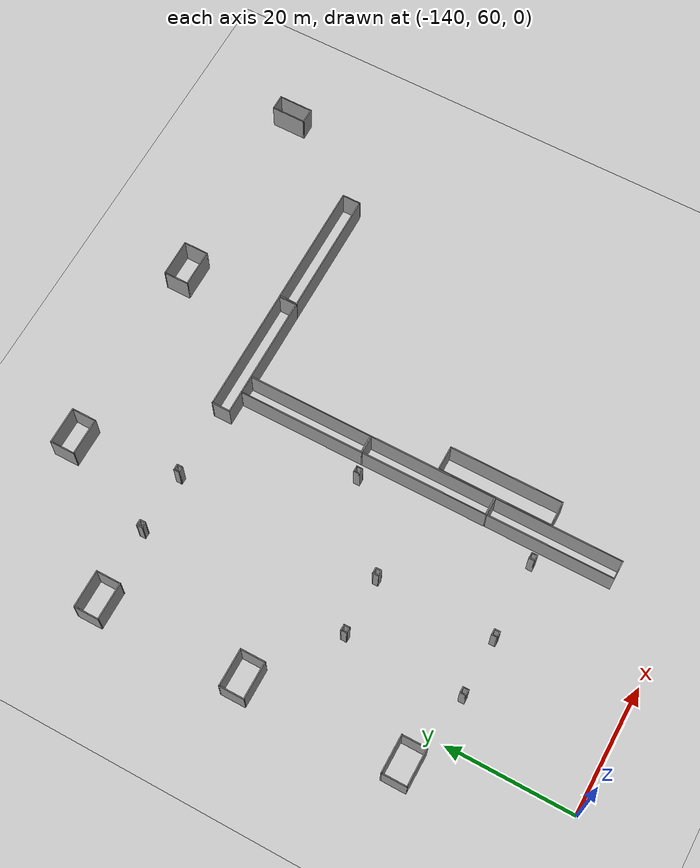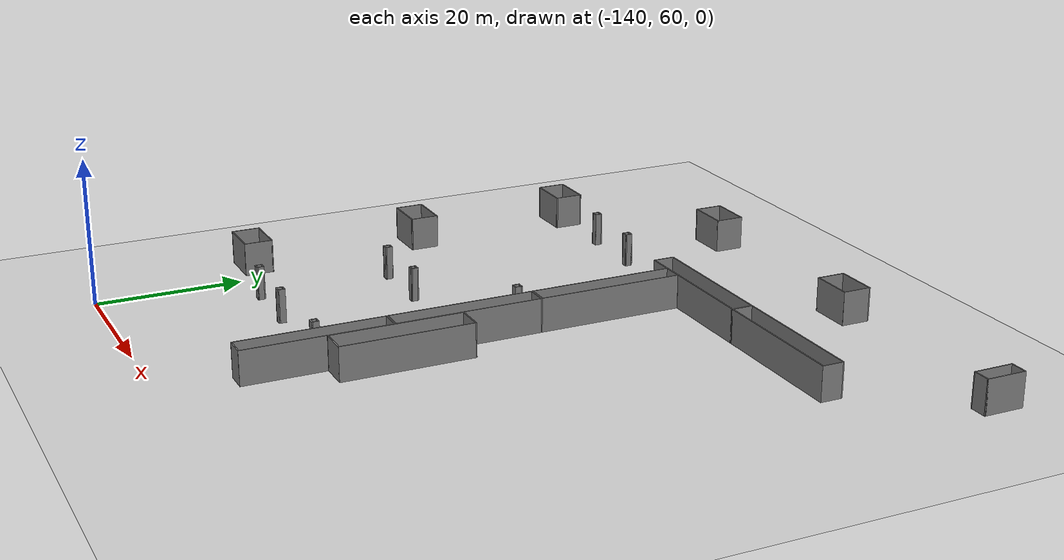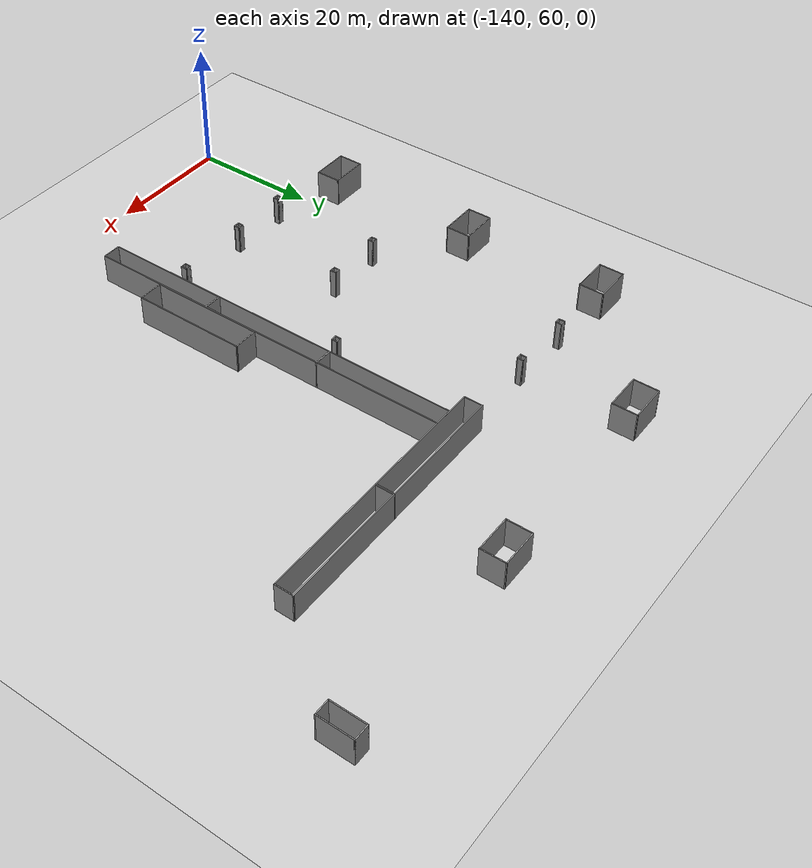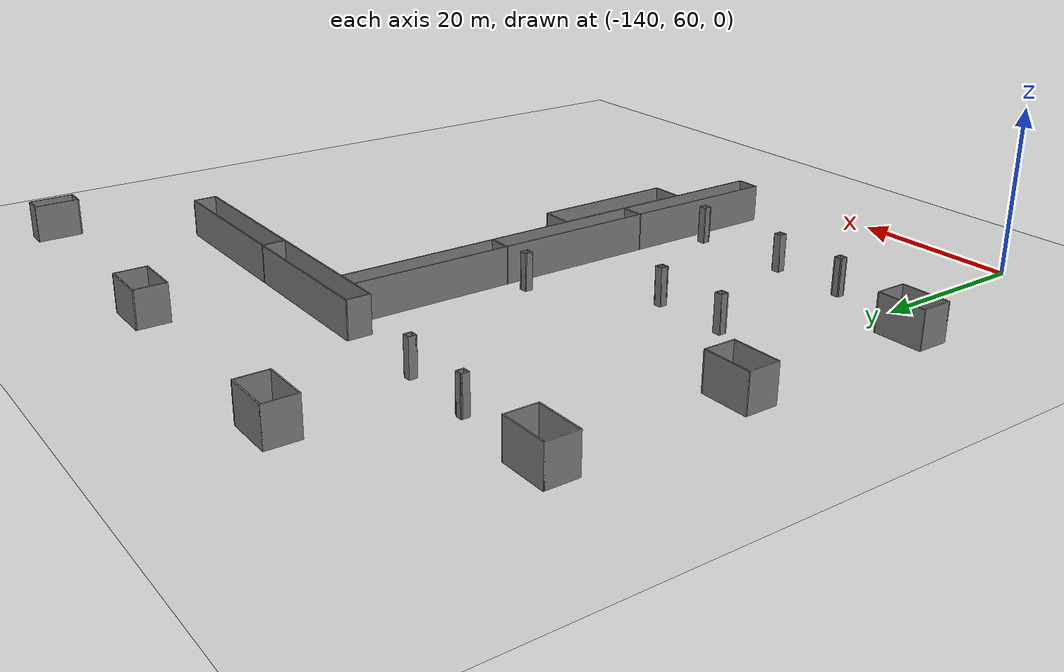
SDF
<sdf version="1.6">
 <world name="default">
  <model name="ground_plane">
   <static>1</static>
   <link name="link">
    <collision name="collision">
     <geometry><plane><normal>0 0 1</normal><size>320 320</size></plane></geometry>
     <surface>
      <contact><collide_bitmask>65535</collide_bitmask></contact>
      <friction><ode><mu>100</mu><mu2>50</mu2></ode></friction>
     </surface>
    </collision>
    <visual name="visual">
     <cast_shadows>0</cast_shadows>
     <geometry><plane><normal>0 0 1</normal><size>320 320</size></plane></geometry>
     <material>
      <script><uri>file://media/materials/scripts/gazebo.material</uri><name>Gazebo/Grey</name></script>
     </material>
    </visual>
   </link>
  </model>
  <model name="base4x6_8">
   <pose>-145.249 131.514 0 0 -0 0</pose>
   <link name="Wall_23">
    <collision name="Wall_23_Collision">
     <geometry><box><size>4 0.15 6.555</size></box></geometry>
     <pose>0 0 1.25 0 -0 0</pose>
    </collision>
    <visual name="Wall_23_Visual">
     <pose>0 0 1.25 0 -0 0</pose>
     <geometry><box><size>4 0.15 6.555</size></box></geometry>
     <material>
      <script><uri>file://media/materials/scripts/gazebo.material</uri><name>Gazebo/Grey</name></script>
      <ambient>1 1 1 1</ambient>
     </material>
     <meta><layer>0</layer></meta>
    </visual>
    <pose>-2.925 0 0 0 -0 -1.5708</pose>
   </link>
   <link name="Wall_24">
    <collision name="Wall_24_Collision">
     <geometry><box><size>6 0.15 6.555</size></box></geometry>
     <pose>0 0 1.25 0 -0 0</pose>
    </collision>
    <visual name="Wall_24_Visual">
     <pose>0 0 1.25 0 -0 0</pose>
     <geometry><box><size>6 0.15 6.555</size></box></geometry>
     <material>
      <script><uri>file://media/materials/scripts/gazebo.material</uri><name>Gazebo/Grey</name></script>
      <ambient>1 1 1 1</ambient>
     </material>
     <meta><layer>0</layer></meta>
    </visual>
    <pose>-0 -1.925 0 0 -0 0</pose>
   </link>
   <link name="Wall_25">
    <collision name="Wall_25_Collision">
     <geometry><box><size>4 0.15 6.555</size></box></geometry>
     <pose>0 0 1.25 0 -0 0</pose>
    </collision>
    <visual name="Wall_25_Visual">
     <pose>0 0 1.25 0 -0 0</pose>
     <geometry><box><size>4 0.15 6.555</size></box></geometry>
     <material>
      <script><uri>file://media/materials/scripts/gazebo.material</uri><name>Gazebo/Grey</name></script>
      <ambient>1 1 1 1</ambient>
     </material>
     <meta><layer>0</layer></meta>
    </visual>
    <pose>2.925 0 0 0 -0 1.5708</pose>
   </link>
   <link name="Wall_26">
    <collision name="Wall_26_Collision">
     <geometry><box><size>6 0.15 6.555</size></box></geometry>
     <pose>0 0 1.25 0 -0 0</pose>
    </collision>
    <visual name="Wall_26_Visual">
     <pose>0 0 1.25 0 -0 0</pose>
     <geometry><box><size>6 0.15 6.555</size></box></geometry>
     <material>
      <script><uri>file://media/materials/scripts/gazebo.material</uri><name>Gazebo/Grey</name></script>
      <ambient>1 1 1 1</ambient>
     </material>
     <meta><layer>0</layer></meta>
    </visual>
    <pose>-0 1.925 0 0 -0 3.14159</pose>
   </link>
   <static>1</static>
  </model>
  <model name="base4x6_8_clone_0">
   <pose>-145.361 108.292 0 0 -0 0</pose>
   <link name="Wall_23">
    <collision name="Wall_23_Collision">
     <geometry><box><size>4 0.15 6.555</size></box></geometry>
     <pose>0 0 1.25 0 -0 0</pose>
    </collision>
    <visual name="Wall_23_Visual">
     <pose>0 0 1.25 0 -0 0</pose>
     <geometry><box><size>4 0.15 6.555</size></box></geometry>
     <material>
      <script><uri>file://media/materials/scripts/gazebo.material</uri><name>Gazebo/Grey</name></script>
      <ambient>1 1 1 1</ambient>
     </material>
     <meta><layer>0</layer></meta>
    </visual>
    <pose>-2.925 0 0 0 -0 -1.5708</pose>
   </link>
   <link name="Wall_24">
    <collision name="Wall_24_Collision">
     <geometry><box><size>6 0.15 6.555</size></box></geometry>
     <pose>0 0 1.25 0 -0 0</pose>
    </collision>
    <visual name="Wall_24_Visual">
     <pose>0 0 1.25 0 -0 0</pose>
     <geometry><box><size>6 0.15 6.555</size></box></geometry>
     <material>
      <script><uri>file://media/materials/scripts/gazebo.material</uri><name>Gazebo/Grey</name></script>
      <ambient>1 1 1 1</ambient>
     </material>
     <meta><layer>0</layer></meta>
    </visual>
    <pose>-0 -1.925 0 0 -0 0</pose>
   </link>
   <link name="Wall_25">
    <collision name="Wall_25_Collision">
     <geometry><box><size>4 0.15 6.555</size></box></geometry>
     <pose>0 0 1.25 0 -0 0</pose>
    </collision>
    <visual name="Wall_25_Visual">
     <pose>0 0 1.25 0 -0 0</pose>
     <geometry><box><size>4 0.15 6.555</size></box></geometry>
     <material>
      <script><uri>file://media/materials/scripts/gazebo.material</uri><name>Gazebo/Grey</name></script>
      <ambient>1 1 1 1</ambient>
     </material>
     <meta><layer>0</layer></meta>
    </visual>
    <pose>2.925 0 0 0 -0 1.5708</pose>
   </link>
   <link name="Wall_26">
    <collision name="Wall_26_Collision">
     <geometry><box><size>6 0.15 6.555</size></box></geometry>
     <pose>0 0 1.25 0 -0 0</pose>
    </collision>
    <visual name="Wall_26_Visual">
     <pose>0 0 1.25 0 -0 0</pose>
     <geometry><box><size>6 0.15 6.555</size></box></geometry>
     <material>
      <script><uri>file://media/materials/scripts/gazebo.material</uri><name>Gazebo/Grey</name></script>
      <ambient>1 1 1 1</ambient>
     </material>
     <meta><layer>0</layer></meta>
    </visual>
    <pose>-0 1.925 0 0 -0 3.14159</pose>
   </link>
   <static>1</static>
  </model>
  <model name="base4x6_8_clone_1">
   <pose>-145.283 83.4365 0 0 -0 0</pose>
   <link name="Wall_23">
    <collision name="Wall_23_Collision">
     <geometry><box><size>4 0.15 6.555</size></box></geometry>
     <pose>0 0 1.25 0 -0 0</pose>
    </collision>
    <visual name="Wall_23_Visual">
     <pose>0 0 1.25 0 -0 0</pose>
     <geometry><box><size>4 0.15 6.555</size></box></geometry>
     <material>
      <script><uri>file://media/materials/scripts/gazebo.material</uri><name>Gazebo/Grey</name></script>
      <ambient>1 1 1 1</ambient>
     </material>
     <meta><layer>0</layer></meta>
    </visual>
    <pose>-2.925 0 0 0 -0 -1.5708</pose>
   </link>
   <link name="Wall_24">
    <collision name="Wall_24_Collision">
     <geometry><box><size>6 0.15 6.555</size></box></geometry>
     <pose>0 0 1.25 0 -0 0</pose>
    </collision>
    <visual name="Wall_24_Visual">
     <pose>0 0 1.25 0 -0 0</pose>
     <geometry><box><size>6 0.15 6.555</size></box></geometry>
     <material>
      <script><uri>file://media/materials/scripts/gazebo.material</uri><name>Gazebo/Grey</name></script>
      <ambient>1 1 1 1</ambient>
     </material>
     <meta><layer>0</layer></meta>
    </visual>
    <pose>-0 -1.925 0 0 -0 0</pose>
   </link>
   <link name="Wall_25">
    <collision name="Wall_25_Collision">
     <geometry><box><size>4 0.15 6.555</size></box></geometry>
     <pose>0 0 1.25 0 -0 0</pose>
    </collision>
    <visual name="Wall_25_Visual">
     <pose>0 0 1.25 0 -0 0</pose>
     <geometry><box><size>4 0.15 6.555</size></box></geometry>
     <material>
      <script><uri>file://media/materials/scripts/gazebo.material</uri><name>Gazebo/Grey</name></script>
      <ambient>1 1 1 1</ambient>
     </material>
     <meta><layer>0</layer></meta>
    </visual>
    <pose>2.925 0 0 0 -0 1.5708</pose>
   </link>
   <link name="Wall_26">
    <collision name="Wall_26_Collision">
     <geometry><box><size>6 0.15 6.555</size></box></geometry>
     <pose>0 0 1.25 0 -0 0</pose>
    </collision>
    <visual name="Wall_26_Visual">
     <pose>0 0 1.25 0 -0 0</pose>
     <geometry><box><size>6 0.15 6.555</size></box></geometry>
     <material>
      <script><uri>file://media/materials/scripts/gazebo.material</uri><name>Gazebo/Grey</name></script>
      <ambient>1 1 1 1</ambient>
     </material>
     <meta><layer>0</layer></meta>
    </visual>
    <pose>-0 1.925 0 0 -0 3.14159</pose>
   </link>
   <static>1</static>
  </model>
  <model name="base4x6_8_clone_8">
   <pose>-94.2981 147.5 0 0 -0 0</pose>
   <link name="Wall_23">
    <collision name="Wall_23_Collision">
     <geometry><box><size>4 0.15 6.555</size></box></geometry>
     <pose>0 0 1.25 0 -0 0</pose>
    </collision>
    <visual name="Wall_23_Visual">
     <pose>0 0 1.25 0 -0 0</pose>
     <geometry><box><size>4 0.15 6.555</size></box></geometry>
     <material>
      <script><uri>file://media/materials/scripts/gazebo.material</uri><name>Gazebo/Grey</name></script>
      <ambient>1 1 1 1</ambient>
     </material>
     <meta><layer>0</layer></meta>
    </visual>
    <pose>-2.925 0 0 0 -0 -1.5708</pose>
   </link>
   <link name="Wall_24">
    <collision name="Wall_24_Collision">
     <geometry><box><size>6 0.15 6.555</size></box></geometry>
     <pose>0 0 1.25 0 -0 0</pose>
    </collision>
    <visual name="Wall_24_Visual">
     <pose>0 0 1.25 0 -0 0</pose>
     <geometry><box><size>6 0.15 6.555</size></box></geometry>
     <material>
      <script><uri>file://media/materials/scripts/gazebo.material</uri><name>Gazebo/Grey</name></script>
      <ambient>1 1 1 1</ambient>
     </material>
     <meta><layer>0</layer></meta>
    </visual>
    <pose>-0 -1.925 0 0 -0 0</pose>
   </link>
   <link name="Wall_25">
    <collision name="Wall_25_Collision">
     <geometry><box><size>4 0.15 6.555</size></box></geometry>
     <pose>0 0 1.25 0 -0 0</pose>
    </collision>
    <visual name="Wall_25_Visual">
     <pose>0 0 1.25 0 -0 0</pose>
     <geometry><box><size>4 0.15 6.555</size></box></geometry>
     <material>
      <script><uri>file://media/materials/scripts/gazebo.material</uri><name>Gazebo/Grey</name></script>
      <ambient>1 1 1 1</ambient>
     </material>
     <meta><layer>0</layer></meta>
    </visual>
    <pose>2.925 0 0 0 -0 1.5708</pose>
   </link>
   <link name="Wall_26">
    <collision name="Wall_26_Collision">
     <geometry><box><size>6 0.15 6.555</size></box></geometry>
     <pose>0 0 1.25 0 -0 0</pose>
    </collision>
    <visual name="Wall_26_Visual">
     <pose>0 0 1.25 0 -0 0</pose>
     <geometry><box><size>6 0.15 6.555</size></box></geometry>
     <material>
      <script><uri>file://media/materials/scripts/gazebo.material</uri><name>Gazebo/Grey</name></script>
      <ambient>1 1 1 1</ambient>
     </material>
     <meta><layer>0</layer></meta>
    </visual>
    <pose>-0 1.925 0 0 -0 3.14159</pose>
   </link>
   <static>1</static>
  </model>
  <model name="base4x6_8_clone_9">
   <pose>-125.896 147.69 0 0 -0 0</pose>
   <link name="Wall_23">
    <collision name="Wall_23_Collision">
     <geometry><box><size>4 0.15 6.555</size></box></geometry>
     <pose>0 0 1.25 0 -0 0</pose>
    </collision>
    <visual name="Wall_23_Visual">
     <pose>0 0 1.25 0 -0 0</pose>
     <geometry><box><size>4 0.15 6.555</size></box></geometry>
     <material>
      <script><uri>file://media/materials/scripts/gazebo.material</uri><name>Gazebo/Grey</name></script>
      <ambient>1 1 1 1</ambient>
     </material>
     <meta><layer>0</layer></meta>
    </visual>
    <pose>-2.925 0 0 0 -0 -1.5708</pose>
   </link>
   <link name="Wall_24">
    <collision name="Wall_24_Collision">
     <geometry><box><size>6 0.15 6.555</size></box></geometry>
     <pose>0 0 1.25 0 -0 0</pose>
    </collision>
    <visual name="Wall_24_Visual">
     <pose>0 0 1.25 0 -0 0</pose>
     <geometry><box><size>6 0.15 6.555</size></box></geometry>
     <material>
      <script><uri>file://media/materials/scripts/gazebo.material</uri><name>Gazebo/Grey</name></script>
      <ambient>1 1 1 1</ambient>
     </material>
     <meta><layer>0</layer></meta>
    </visual>
    <pose>-0 -1.925 0 0 -0 0</pose>
   </link>
   <link name="Wall_25">
    <collision name="Wall_25_Collision">
     <geometry><box><size>4 0.15 6.555</size></box></geometry>
     <pose>0 0 1.25 0 -0 0</pose>
    </collision>
    <visual name="Wall_25_Visual">
     <pose>0 0 1.25 0 -0 0</pose>
     <geometry><box><size>4 0.15 6.555</size></box></geometry>
     <material>
      <script><uri>file://media/materials/scripts/gazebo.material</uri><name>Gazebo/Grey</name></script>
      <ambient>1 1 1 1</ambient>
     </material>
     <meta><layer>0</layer></meta>
    </visual>
    <pose>2.925 0 0 0 -0 1.5708</pose>
   </link>
   <link name="Wall_26">
    <collision name="Wall_26_Collision">
     <geometry><box><size>6 0.15 6.555</size></box></geometry>
     <pose>0 0 1.25 0 -0 0</pose>
    </collision>
    <visual name="Wall_26_Visual">
     <pose>0 0 1.25 0 -0 0</pose>
     <geometry><box><size>6 0.15 6.555</size></box></geometry>
     <material>
      <script><uri>file://media/materials/scripts/gazebo.material</uri><name>Gazebo/Grey</name></script>
      <ambient>1 1 1 1</ambient>
     </material>
     <meta><layer>0</layer></meta>
    </visual>
    <pose>-0 1.925 0 0 -0 3.14159</pose>
   </link>
   <static>1</static>
  </model>
  <model name="box_1mx1m_15_clone">
   <pose>-123.637 131.359 0 0 -0 0</pose>
   <link name="Wall_10">
    <collision name="Wall_10_Collision">
     <geometry><box><size>1 0.15 6.555</size></box></geometry>
     <pose>0 0 1.25 0 -0 0</pose>
    </collision>
    <visual name="Wall_10_Visual">
     <pose>0 0 1.25 0 -0 0</pose>
     <geometry><box><size>1 0.15 6.555</size></box></geometry>
     <material>
      <script><uri>file://media/materials/scripts/gazebo.material</uri><name>Gazebo/Grey</name></script>
      <ambient>1 1 1 1</ambient>
     </material>
     <meta><layer>0</layer></meta>
    </visual>
    <pose>-0.425 0 0 0 -0 -1.5708</pose>
   </link>
   <link name="Wall_11">
    <collision name="Wall_11_Collision">
     <geometry><box><size>1 0.15 6.555</size></box></geometry>
     <pose>0 0 1.25 0 -0 0</pose>
    </collision>
    <visual name="Wall_11_Visual">
     <pose>0 0 1.25 0 -0 0</pose>
     <geometry><box><size>1 0.15 6.555</size></box></geometry>
     <material>
      <script><uri>file://media/materials/scripts/gazebo.material</uri><name>Gazebo/Grey</name></script>
      <ambient>1 1 1 1</ambient>
     </material>
     <meta><layer>0</layer></meta>
    </visual>
    <pose>0 -0.425 0 0 -0 0</pose>
   </link>
   <link name="Wall_12">
    <collision name="Wall_12_Collision">
     <geometry><box><size>1 0.15 6.555</size></box></geometry>
     <pose>0 0 1.25 0 -0 0</pose>
    </collision>
    <visual name="Wall_12_Visual">
     <pose>0 0 1.25 0 -0 0</pose>
     <geometry><box><size>1 0.15 6.555</size></box></geometry>
     <material>
      <script><uri>file://media/materials/scripts/gazebo.material</uri><name>Gazebo/Grey</name></script>
      <ambient>1 1 1 1</ambient>
     </material>
     <meta><layer>0</layer></meta>
    </visual>
    <pose>0.425 0 0 0 -0 1.5708</pose>
   </link>
   <link name="Wall_13">
    <collision name="Wall_13_Collision">
     <geometry><box><size>1 0.15 6.555</size></box></geometry>
     <pose>0 0 1.25 0 -0 0</pose>
    </collision>
    <visual name="Wall_13_Visual">
     <pose>0 0 1.25 0 -0 0</pose>
     <geometry><box><size>1 0.15 6.555</size></box></geometry>
     <material>
      <script><uri>file://media/materials/scripts/gazebo.material</uri><name>Gazebo/Grey</name></script>
      <ambient>1 1 1 1</ambient>
     </material>
     <meta><layer>0</layer></meta>
    </visual>
    <pose>0 0.425 0 0 -0 3.14159</pose>
   </link>
   <static>1</static>
  </model>
  <model name="box_1mx1m_15_clone_0">
   <pose>-133.361 131.658 0 0 -0 0</pose>
   <link name="Wall_10">
    <collision name="Wall_10_Collision">
     <geometry><box><size>1 0.15 6.555</size></box></geometry>
     <pose>0 0 1.25 0 -0 0</pose>
    </collision>
    <visual name="Wall_10_Visual">
     <pose>0 0 1.25 0 -0 0</pose>
     <geometry><box><size>1 0.15 6.555</size></box></geometry>
     <material>
      <script><uri>file://media/materials/scripts/gazebo.material</uri><name>Gazebo/Grey</name></script>
      <ambient>1 1 1 1</ambient>
     </material>
     <meta><layer>0</layer></meta>
    </visual>
    <pose>-0.425 0 0 0 -0 -1.5708</pose>
   </link>
   <link name="Wall_11">
    <collision name="Wall_11_Collision">
     <geometry><box><size>1 0.15 6.555</size></box></geometry>
     <pose>0 0 1.25 0 -0 0</pose>
    </collision>
    <visual name="Wall_11_Visual">
     <pose>0 0 1.25 0 -0 0</pose>
     <geometry><box><size>1 0.15 6.555</size></box></geometry>
     <material>
      <script><uri>file://media/materials/scripts/gazebo.material</uri><name>Gazebo/Grey</name></script>
      <ambient>1 1 1 1</ambient>
     </material>
     <meta><layer>0</layer></meta>
    </visual>
    <pose>0 -0.425 0 0 -0 0</pose>
   </link>
   <link name="Wall_12">
    <collision name="Wall_12_Collision">
     <geometry><box><size>1 0.15 6.555</size></box></geometry>
     <pose>0 0 1.25 0 -0 0</pose>
    </collision>
    <visual name="Wall_12_Visual">
     <pose>0 0 1.25 0 -0 0</pose>
     <geometry><box><size>1 0.15 6.555</size></box></geometry>
     <material>
      <script><uri>file://media/materials/scripts/gazebo.material</uri><name>Gazebo/Grey</name></script>
      <ambient>1 1 1 1</ambient>
     </material>
     <meta><layer>0</layer></meta>
    </visual>
    <pose>0.425 0 0 0 -0 1.5708</pose>
   </link>
   <link name="Wall_13">
    <collision name="Wall_13_Collision">
     <geometry><box><size>1 0.15 6.555</size></box></geometry>
     <pose>0 0 1.25 0 -0 0</pose>
    </collision>
    <visual name="Wall_13_Visual">
     <pose>0 0 1.25 0 -0 0</pose>
     <geometry><box><size>1 0.15 6.555</size></box></geometry>
     <material>
      <script><uri>file://media/materials/scripts/gazebo.material</uri><name>Gazebo/Grey</name></script>
      <ambient>1 1 1 1</ambient>
     </material>
     <meta><layer>0</layer></meta>
    </visual>
    <pose>0 0.425 0 0 -0 3.14159</pose>
   </link>
   <static>1</static>
  </model>
  <model name="box_1mx1m_15_clone_1">
   <pose>-123.752 99.0367 0 0 -0 0</pose>
   <link name="Wall_10">
    <collision name="Wall_10_Collision">
     <geometry><box><size>1 0.15 6.555</size></box></geometry>
     <pose>0 0 1.25 0 -0 0</pose>
    </collision>
    <visual name="Wall_10_Visual">
     <pose>0 0 1.25 0 -0 0</pose>
     <geometry><box><size>1 0.15 6.555</size></box></geometry>
     <material>
      <script><uri>file://media/materials/scripts/gazebo.material</uri><name>Gazebo/Grey</name></script>
      <ambient>1 1 1 1</ambient>
     </material>
     <meta><layer>0</layer></meta>
    </visual>
    <pose>-0.425 0 0 0 -0 -1.5708</pose>
   </link>
   <link name="Wall_11">
    <collision name="Wall_11_Collision">
     <geometry><box><size>1 0.15 6.555</size></box></geometry>
     <pose>0 0 1.25 0 -0 0</pose>
    </collision>
    <visual name="Wall_11_Visual">
     <pose>0 0 1.25 0 -0 0</pose>
     <geometry><box><size>1 0.15 6.555</size></box></geometry>
     <material>
      <script><uri>file://media/materials/scripts/gazebo.material</uri><name>Gazebo/Grey</name></script>
      <ambient>1 1 1 1</ambient>
     </material>
     <meta><layer>0</layer></meta>
    </visual>
    <pose>0 -0.425 0 0 -0 0</pose>
   </link>
   <link name="Wall_12">
    <collision name="Wall_12_Collision">
     <geometry><box><size>1 0.15 6.555</size></box></geometry>
     <pose>0 0 1.25 0 -0 0</pose>
    </collision>
    <visual name="Wall_12_Visual">
     <pose>0 0 1.25 0 -0 0</pose>
     <geometry><box><size>1 0.15 6.555</size></box></geometry>
     <material>
      <script><uri>file://media/materials/scripts/gazebo.material</uri><name>Gazebo/Grey</name></script>
      <ambient>1 1 1 1</ambient>
     </material>
     <meta><layer>0</layer></meta>
    </visual>
    <pose>0.425 0 0 0 -0 1.5708</pose>
   </link>
   <link name="Wall_13">
    <collision name="Wall_13_Collision">
     <geometry><box><size>1 0.15 6.555</size></box></geometry>
     <pose>0 0 1.25 0 -0 0</pose>
    </collision>
    <visual name="Wall_13_Visual">
     <pose>0 0 1.25 0 -0 0</pose>
     <geometry><box><size>1 0.15 6.555</size></box></geometry>
     <material>
      <script><uri>file://media/materials/scripts/gazebo.material</uri><name>Gazebo/Grey</name></script>
      <ambient>1 1 1 1</ambient>
     </material>
     <meta><layer>0</layer></meta>
    </visual>
    <pose>0 0.425 0 0 -0 3.14159</pose>
   </link>
   <static>1</static>
  </model>
  <model name="box_1mx1m_15_clone_2">
   <pose>-123.762 80.5479 0 0 -0 0</pose>
   <link name="Wall_10">
    <collision name="Wall_10_Collision">
     <geometry><box><size>1 0.15 6.555</size></box></geometry>
     <pose>0 0 1.25 0 -0 0</pose>
    </collision>
    <visual name="Wall_10_Visual">
     <pose>0 0 1.25 0 -0 0</pose>
     <geometry><box><size>1 0.15 6.555</size></box></geometry>
     <material>
      <script><uri>file://media/materials/scripts/gazebo.material</uri><name>Gazebo/Grey</name></script>
      <ambient>1 1 1 1</ambient>
     </material>
     <meta><layer>0</layer></meta>
    </visual>
    <pose>-0.425 0 0 0 -0 -1.5708</pose>
   </link>
   <link name="Wall_11">
    <collision name="Wall_11_Collision">
     <geometry><box><size>1 0.15 6.555</size></box></geometry>
     <pose>0 0 1.25 0 -0 0</pose>
    </collision>
    <visual name="Wall_11_Visual">
     <pose>0 0 1.25 0 -0 0</pose>
     <geometry><box><size>1 0.15 6.555</size></box></geometry>
     <material>
      <script><uri>file://media/materials/scripts/gazebo.material</uri><name>Gazebo/Grey</name></script>
      <ambient>1 1 1 1</ambient>
     </material>
     <meta><layer>0</layer></meta>
    </visual>
    <pose>0 -0.425 0 0 -0 0</pose>
   </link>
   <link name="Wall_12">
    <collision name="Wall_12_Collision">
     <geometry><box><size>1 0.15 6.555</size></box></geometry>
     <pose>0 0 1.25 0 -0 0</pose>
    </collision>
    <visual name="Wall_12_Visual">
     <pose>0 0 1.25 0 -0 0</pose>
     <geometry><box><size>1 0.15 6.555</size></box></geometry>
     <material>
      <script><uri>file://media/materials/scripts/gazebo.material</uri><name>Gazebo/Grey</name></script>
      <ambient>1 1 1 1</ambient>
     </material>
     <meta><layer>0</layer></meta>
    </visual>
    <pose>0.425 0 0 0 -0 1.5708</pose>
   </link>
   <link name="Wall_13">
    <collision name="Wall_13_Collision">
     <geometry><box><size>1 0.15 6.555</size></box></geometry>
     <pose>0 0 1.25 0 -0 0</pose>
    </collision>
    <visual name="Wall_13_Visual">
     <pose>0 0 1.25 0 -0 0</pose>
     <geometry><box><size>1 0.15 6.555</size></box></geometry>
     <material>
      <script><uri>file://media/materials/scripts/gazebo.material</uri><name>Gazebo/Grey</name></script>
      <ambient>1 1 1 1</ambient>
     </material>
     <meta><layer>0</layer></meta>
    </visual>
    <pose>0 0.425 0 0 -0 3.14159</pose>
   </link>
   <static>1</static>
  </model>
  <model name="box_1mx1m_15_clone_17">
   <pose>-133.077 99.0078 0 0 -0 0</pose>
   <link name="Wall_10">
    <collision name="Wall_10_Collision">
     <geometry><box><size>1 0.15 6.555</size></box></geometry>
     <pose>0 0 1.25 0 -0 0</pose>
    </collision>
    <visual name="Wall_10_Visual">
     <pose>0 0 1.25 0 -0 0</pose>
     <geometry><box><size>1 0.15 6.555</size></box></geometry>
     <material>
      <script><uri>file://media/materials/scripts/gazebo.material</uri><name>Gazebo/Grey</name></script>
      <ambient>1 1 1 1</ambient>
     </material>
     <meta><layer>0</layer></meta>
    </visual>
    <pose>-0.425 0 0 0 -0 -1.5708</pose>
   </link>
   <link name="Wall_11">
    <collision name="Wall_11_Collision">
     <geometry><box><size>1 0.15 6.555</size></box></geometry>
     <pose>0 0 1.25 0 -0 0</pose>
    </collision>
    <visual name="Wall_11_Visual">
     <pose>0 0 1.25 0 -0 0</pose>
     <geometry><box><size>1 0.15 6.555</size></box></geometry>
     <material>
      <script><uri>file://media/materials/scripts/gazebo.material</uri><name>Gazebo/Grey</name></script>
      <ambient>1 1 1 1</ambient>
     </material>
     <meta><layer>0</layer></meta>
    </visual>
    <pose>0 -0.425 0 0 -0 0</pose>
   </link>
   <link name="Wall_12">
    <collision name="Wall_12_Collision">
     <geometry><box><size>1 0.15 6.555</size></box></geometry>
     <pose>0 0 1.25 0 -0 0</pose>
    </collision>
    <visual name="Wall_12_Visual">
     <pose>0 0 1.25 0 -0 0</pose>
     <geometry><box><size>1 0.15 6.555</size></box></geometry>
     <material>
      <script><uri>file://media/materials/scripts/gazebo.material</uri><name>Gazebo/Grey</name></script>
      <ambient>1 1 1 1</ambient>
     </material>
     <meta><layer>0</layer></meta>
    </visual>
    <pose>0.425 0 0 0 -0 1.5708</pose>
   </link>
   <link name="Wall_13">
    <collision name="Wall_13_Collision">
     <geometry><box><size>1 0.15 6.555</size></box></geometry>
     <pose>0 0 1.25 0 -0 0</pose>
    </collision>
    <visual name="Wall_13_Visual">
     <pose>0 0 1.25 0 -0 0</pose>
     <geometry><box><size>1 0.15 6.555</size></box></geometry>
     <material>
      <script><uri>file://media/materials/scripts/gazebo.material</uri><name>Gazebo/Grey</name></script>
      <ambient>1 1 1 1</ambient>
     </material>
     <meta><layer>0</layer></meta>
    </visual>
    <pose>0 0.425 0 0 -0 3.14159</pose>
   </link>
   <static>1</static>
  </model>
  <model name="box_1mx1m_15_clone_2_clone">
   <pose>-133.058 80.6658 0 0 -0 0</pose>
   <link name="Wall_10">
    <collision name="Wall_10_Collision">
     <geometry><box><size>1 0.15 6.555</size></box></geometry>
     <pose>0 0 1.25 0 -0 0</pose>
    </collision>
    <visual name="Wall_10_Visual">
     <pose>0 0 1.25 0 -0 0</pose>
     <geometry><box><size>1 0.15 6.555</size></box></geometry>
     <material>
      <script><uri>file://media/materials/scripts/gazebo.material</uri><name>Gazebo/Grey</name></script>
      <ambient>1 1 1 1</ambient>
     </material>
     <meta><layer>0</layer></meta>
    </visual>
    <pose>-0.425 0 0 0 -0 -1.5708</pose>
   </link>
   <link name="Wall_11">
    <collision name="Wall_11_Collision">
     <geometry><box><size>1 0.15 6.555</size></box></geometry>
     <pose>0 0 1.25 0 -0 0</pose>
    </collision>
    <visual name="Wall_11_Visual">
     <pose>0 0 1.25 0 -0 0</pose>
     <geometry><box><size>1 0.15 6.555</size></box></geometry>
     <material>
      <script><uri>file://media/materials/scripts/gazebo.material</uri><name>Gazebo/Grey</name></script>
      <ambient>1 1 1 1</ambient>
     </material>
     <meta><layer>0</layer></meta>
    </visual>
    <pose>0 -0.425 0 0 -0 0</pose>
   </link>
   <link name="Wall_12">
    <collision name="Wall_12_Collision">
     <geometry><box><size>1 0.15 6.555</size></box></geometry>
     <pose>0 0 1.25 0 -0 0</pose>
    </collision>
    <visual name="Wall_12_Visual">
     <pose>0 0 1.25 0 -0 0</pose>
     <geometry><box><size>1 0.15 6.555</size></box></geometry>
     <material>
      <script><uri>file://media/materials/scripts/gazebo.material</uri><name>Gazebo/Grey</name></script>
      <ambient>1 1 1 1</ambient>
     </material>
     <meta><layer>0</layer></meta>
    </visual>
    <pose>0.425 0 0 0 -0 1.5708</pose>
   </link>
   <link name="Wall_13">
    <collision name="Wall_13_Collision">
     <geometry><box><size>1 0.15 6.555</size></box></geometry>
     <pose>0 0 1.25 0 -0 0</pose>
    </collision>
    <visual name="Wall_13_Visual">
     <pose>0 0 1.25 0 -0 0</pose>
     <geometry><box><size>1 0.15 6.555</size></box></geometry>
     <material>
      <script><uri>file://media/materials/scripts/gazebo.material</uri><name>Gazebo/Grey</name></script>
      <ambient>1 1 1 1</ambient>
     </material>
     <meta><layer>0</layer></meta>
    </visual>
    <pose>0 0.425 0 0 -0 3.14159</pose>
   </link>
   <static>1</static>
  </model>
  <model name="base3x20_clone">
   <pose>-102.463 130.856 0 0 -0 0</pose>
   <link name="Wall_16">
    <collision name="Wall_16_Collision">
     <geometry><box><size>3 0.15 6.555</size></box></geometry>
     <pose>0 0 1.25 0 -0 0</pose>
    </collision>
    <visual name="Wall_16_Visual">
     <pose>0 0 1.25 0 -0 0</pose>
     <geometry><box><size>3 0.15 6.555</size></box></geometry>
     <material>
      <script><uri>file://media/materials/scripts/gazebo.material</uri><name>Gazebo/Grey</name></script>
      <ambient>1 1 1 1</ambient>
     </material>
     <meta><layer>0</layer></meta>
    </visual>
    <pose>-9.925 -0 0 0 -0 -1.5708</pose>
   </link>
   <link name="Wall_17">
    <collision name="Wall_17_Collision">
     <geometry><box><size>20 0.15 6.555</size></box></geometry>
     <pose>0 0 1.25 0 -0 0</pose>
    </collision>
    <visual name="Wall_17_Visual">
     <pose>0 0 1.25 0 -0 0</pose>
     <geometry><box><size>20 0.15 6.555</size></box></geometry>
     <material>
      <script><uri>file://media/materials/scripts/gazebo.material</uri><name>Gazebo/Grey</name></script>
      <ambient>1 1 1 1</ambient>
     </material>
     <meta><layer>0</layer></meta>
    </visual>
    <pose>-0 -1.425 0 0 -0 0</pose>
   </link>
   <link name="Wall_18">
    <collision name="Wall_18_Collision">
     <geometry><box><size>3 0.15 6.555</size></box></geometry>
     <pose>0 0 1.25 0 -0 0</pose>
    </collision>
    <visual name="Wall_18_Visual">
     <pose>0 0 1.25 0 -0 0</pose>
     <geometry><box><size>3 0.15 6.555</size></box></geometry>
     <material>
      <script><uri>file://media/materials/scripts/gazebo.material</uri><name>Gazebo/Grey</name></script>
      <ambient>1 1 1 1</ambient>
     </material>
     <meta><layer>0</layer></meta>
    </visual>
    <pose>9.925 -0 0 0 -0 1.5708</pose>
   </link>
   <link name="Wall_19">
    <collision name="Wall_19_Collision">
     <geometry><box><size>20 0.15 6.555</size></box></geometry>
     <pose>0 0 1.25 0 -0 0</pose>
    </collision>
    <visual name="Wall_19_Visual">
     <pose>0 0 1.25 0 -0 0</pose>
     <geometry><box><size>20 0.15 6.555</size></box></geometry>
     <material>
      <script><uri>file://media/materials/scripts/gazebo.material</uri><name>Gazebo/Grey</name></script>
      <ambient>1 1 1 1</ambient>
     </material>
     <meta><layer>0</layer></meta>
    </visual>
    <pose>-0 1.425 0 0 -0 3.14159</pose>
   </link>
   <static>1</static>
  </model>
  <model name="base3x20_clone_clone">
   <pose>-82.4675 130.863 0 0 -0 0</pose>
   <link name="Wall_16">
    <collision name="Wall_16_Collision">
     <geometry><box><size>3 0.15 6.555</size></box></geometry>
     <pose>0 0 1.25 0 -0 0</pose>
    </collision>
    <visual name="Wall_16_Visual">
     <pose>0 0 1.25 0 -0 0</pose>
     <geometry><box><size>3 0.15 6.555</size></box></geometry>
     <material>
      <script><uri>file://media/materials/scripts/gazebo.material</uri><name>Gazebo/Grey</name></script>
      <ambient>1 1 1 1</ambient>
     </material>
     <meta><layer>0</layer></meta>
    </visual>
    <pose>-9.925 -0 0 0 -0 -1.5708</pose>
   </link>
   <link name="Wall_17">
    <collision name="Wall_17_Collision">
     <geometry><box><size>20 0.15 6.555</size></box></geometry>
     <pose>0 0 1.25 0 -0 0</pose>
    </collision>
    <visual name="Wall_17_Visual">
     <pose>0 0 1.25 0 -0 0</pose>
     <geometry><box><size>20 0.15 6.555</size></box></geometry>
     <material>
      <script><uri>file://media/materials/scripts/gazebo.material</uri><name>Gazebo/Grey</name></script>
      <ambient>1 1 1 1</ambient>
     </material>
     <meta><layer>0</layer></meta>
    </visual>
    <pose>-0 -1.425 0 0 -0 0</pose>
   </link>
   <link name="Wall_18">
    <collision name="Wall_18_Collision">
     <geometry><box><size>3 0.15 6.555</size></box></geometry>
     <pose>0 0 1.25 0 -0 0</pose>
    </collision>
    <visual name="Wall_18_Visual">
     <pose>0 0 1.25 0 -0 0</pose>
     <geometry><box><size>3 0.15 6.555</size></box></geometry>
     <material>
      <script><uri>file://media/materials/scripts/gazebo.material</uri><name>Gazebo/Grey</name></script>
      <ambient>1 1 1 1</ambient>
     </material>
     <meta><layer>0</layer></meta>
    </visual>
    <pose>9.925 -0 0 0 -0 1.5708</pose>
   </link>
   <link name="Wall_19">
    <collision name="Wall_19_Collision">
     <geometry><box><size>20 0.15 6.555</size></box></geometry>
     <pose>0 0 1.25 0 -0 0</pose>
    </collision>
    <visual name="Wall_19_Visual">
     <pose>0 0 1.25 0 -0 0</pose>
     <geometry><box><size>20 0.15 6.555</size></box></geometry>
     <material>
      <script><uri>file://media/materials/scripts/gazebo.material</uri><name>Gazebo/Grey</name></script>
      <ambient>1 1 1 1</ambient>
     </material>
     <meta><layer>0</layer></meta>
    </visual>
    <pose>-0 1.425 0 0 -0 3.14159</pose>
   </link>
   <static>1</static>
  </model>
  <model name="base20x3_3_clone_clone">
   <pose>-107.481 119.489 0 0 -0 0</pose>
   <link name="Wall_21">
    <collision name="Wall_21_Collision">
     <geometry><box><size>20 0.15 6.555</size></box></geometry>
     <pose>0 0 1.25 0 -0 0</pose>
    </collision>
    <visual name="Wall_21_Visual">
     <pose>0 0 1.25 0 -0 0</pose>
     <geometry><box><size>20 0.15 6.555</size></box></geometry>
     <material>
      <script><uri>file://media/materials/scripts/gazebo.material</uri><name>Gazebo/Grey</name></script>
      <ambient>1 1 1 1</ambient>
     </material>
     <meta><layer>0</layer></meta>
    </visual>
    <pose>-1.425 -0 0 0 -0 -1.5708</pose>
   </link>
   <link name="Wall_22">
    <collision name="Wall_22_Collision">
     <geometry><box><size>3 0.15 6.555</size></box></geometry>
     <pose>0 0 1.25 0 -0 0</pose>
    </collision>
    <visual name="Wall_22_Visual">
     <pose>0 0 1.25 0 -0 0</pose>
     <geometry><box><size>3 0.15 6.555</size></box></geometry>
     <material>
      <script><uri>file://media/materials/scripts/gazebo.material</uri><name>Gazebo/Grey</name></script>
      <ambient>1 1 1 1</ambient>
     </material>
     <meta><layer>0</layer></meta>
    </visual>
    <pose>-0 -9.925 0 0 -0 0</pose>
   </link>
   <link name="Wall_23">
    <collision name="Wall_23_Collision">
     <geometry><box><size>20 0.15 6.555</size></box></geometry>
     <pose>0 0 1.25 0 -0 0</pose>
    </collision>
    <visual name="Wall_23_Visual">
     <pose>0 0 1.25 0 -0 0</pose>
     <geometry><box><size>20 0.15 6.555</size></box></geometry>
     <material>
      <script><uri>file://media/materials/scripts/gazebo.material</uri><name>Gazebo/Grey</name></script>
      <ambient>1 1 1 1</ambient>
     </material>
     <meta><layer>0</layer></meta>
    </visual>
    <pose>1.425 -0 0 0 -0 1.5708</pose>
   </link>
   <link name="Wall_24">
    <collision name="Wall_24_Collision">
     <geometry><box><size>3 0.15 6.555</size></box></geometry>
     <pose>0 0 1.25 0 -0 0</pose>
    </collision>
    <visual name="Wall_24_Visual">
     <pose>0 0 1.25 0 -0 0</pose>
     <geometry><box><size>3 0.15 6.555</size></box></geometry>
     <material>
      <script><uri>file://media/materials/scripts/gazebo.material</uri><name>Gazebo/Grey</name></script>
      <ambient>1 1 1 1</ambient>
     </material>
     <meta><layer>0</layer></meta>
    </visual>
    <pose>-0 9.925 0 0 -0 3.14159</pose>
   </link>
   <static>1</static>
  </model>
  <model name="base20x3_3_clone_clone_0">
   <pose>-107.47 99.5051 0 0 -0 0</pose>
   <link name="Wall_21">
    <collision name="Wall_21_Collision">
     <geometry><box><size>20 0.15 6.555</size></box></geometry>
     <pose>0 0 1.25 0 -0 0</pose>
    </collision>
    <visual name="Wall_21_Visual">
     <pose>0 0 1.25 0 -0 0</pose>
     <geometry><box><size>20 0.15 6.555</size></box></geometry>
     <material>
      <script><uri>file://media/materials/scripts/gazebo.material</uri><name>Gazebo/Grey</name></script>
      <ambient>1 1 1 1</ambient>
     </material>
     <meta><layer>0</layer></meta>
    </visual>
    <pose>-1.425 -0 0 0 -0 -1.5708</pose>
   </link>
   <link name="Wall_22">
    <collision name="Wall_22_Collision">
     <geometry><box><size>3 0.15 6.555</size></box></geometry>
     <pose>0 0 1.25 0 -0 0</pose>
    </collision>
    <visual name="Wall_22_Visual">
     <pose>0 0 1.25 0 -0 0</pose>
     <geometry><box><size>3 0.15 6.555</size></box></geometry>
     <material>
      <script><uri>file://media/materials/scripts/gazebo.material</uri><name>Gazebo/Grey</name></script>
      <ambient>1 1 1 1</ambient>
     </material>
     <meta><layer>0</layer></meta>
    </visual>
    <pose>-0 -9.925 0 0 -0 0</pose>
   </link>
   <link name="Wall_23">
    <collision name="Wall_23_Collision">
     <geometry><box><size>20 0.15 6.555</size></box></geometry>
     <pose>0 0 1.25 0 -0 0</pose>
    </collision>
    <visual name="Wall_23_Visual">
     <pose>0 0 1.25 0 -0 0</pose>
     <geometry><box><size>20 0.15 6.555</size></box></geometry>
     <material>
      <script><uri>file://media/materials/scripts/gazebo.material</uri><name>Gazebo/Grey</name></script>
      <ambient>1 1 1 1</ambient>
     </material>
     <meta><layer>0</layer></meta>
    </visual>
    <pose>1.425 -0 0 0 -0 1.5708</pose>
   </link>
   <link name="Wall_24">
    <collision name="Wall_24_Collision">
     <geometry><box><size>3 0.15 6.555</size></box></geometry>
     <pose>0 0 1.25 0 -0 0</pose>
    </collision>
    <visual name="Wall_24_Visual">
     <pose>0 0 1.25 0 -0 0</pose>
     <geometry><box><size>3 0.15 6.555</size></box></geometry>
     <material>
      <script><uri>file://media/materials/scripts/gazebo.material</uri><name>Gazebo/Grey</name></script>
      <ambient>1 1 1 1</ambient>
     </material>
     <meta><layer>0</layer></meta>
    </visual>
    <pose>-0 9.925 0 0 -0 3.14159</pose>
   </link>
   <static>1</static>
  </model>
  <model name="base20x3_3_clone_clone_1">
   <pose>-107.455 79.5176 0 0 -0 0</pose>
   <link name="Wall_21">
    <collision name="Wall_21_Collision">
     <geometry><box><size>20 0.15 6.555</size></box></geometry>
     <pose>0 0 1.25 0 -0 0</pose>
    </collision>
    <visual name="Wall_21_Visual">
     <pose>0 0 1.25 0 -0 0</pose>
     <geometry><box><size>20 0.15 6.555</size></box></geometry>
     <material>
      <script><uri>file://media/materials/scripts/gazebo.material</uri><name>Gazebo/Grey</name></script>
      <ambient>1 1 1 1</ambient>
     </material>
     <meta><layer>0</layer></meta>
    </visual>
    <pose>-1.425 -0 0 0 -0 -1.5708</pose>
   </link>
   <link name="Wall_22">
    <collision name="Wall_22_Collision">
     <geometry><box><size>3 0.15 6.555</size></box></geometry>
     <pose>0 0 1.25 0 -0 0</pose>
    </collision>
    <visual name="Wall_22_Visual">
     <pose>0 0 1.25 0 -0 0</pose>
     <geometry><box><size>3 0.15 6.555</size></box></geometry>
     <material>
      <script><uri>file://media/materials/scripts/gazebo.material</uri><name>Gazebo/Grey</name></script>
      <ambient>1 1 1 1</ambient>
     </material>
     <meta><layer>0</layer></meta>
    </visual>
    <pose>-0 -9.925 0 0 -0 0</pose>
   </link>
   <link name="Wall_23">
    <collision name="Wall_23_Collision">
     <geometry><box><size>20 0.15 6.555</size></box></geometry>
     <pose>0 0 1.25 0 -0 0</pose>
    </collision>
    <visual name="Wall_23_Visual">
     <pose>0 0 1.25 0 -0 0</pose>
     <geometry><box><size>20 0.15 6.555</size></box></geometry>
     <material>
      <script><uri>file://media/materials/scripts/gazebo.material</uri><name>Gazebo/Grey</name></script>
      <ambient>1 1 1 1</ambient>
     </material>
     <meta><layer>0</layer></meta>
    </visual>
    <pose>1.425 -0 0 0 -0 1.5708</pose>
   </link>
   <link name="Wall_24">
    <collision name="Wall_24_Collision">
     <geometry><box><size>3 0.15 6.555</size></box></geometry>
     <pose>0 0 1.25 0 -0 0</pose>
    </collision>
    <visual name="Wall_24_Visual">
     <pose>0 0 1.25 0 -0 0</pose>
     <geometry><box><size>3 0.15 6.555</size></box></geometry>
     <material>
      <script><uri>file://media/materials/scripts/gazebo.material</uri><name>Gazebo/Grey</name></script>
      <ambient>1 1 1 1</ambient>
     </material>
     <meta><layer>0</layer></meta>
    </visual>
    <pose>-0 9.925 0 0 -0 3.14159</pose>
   </link>
   <static>1</static>
  </model>
  <model name="box_1mx1m_15_clone_clone">
   <pose>-111.556 108.614 0 0 -0 0</pose>
   <link name="Wall_10">
    <collision name="Wall_10_Collision">
     <geometry><box><size>1 0.15 6.555</size></box></geometry>
     <pose>0 0 1.25 0 -0 0</pose>
    </collision>
    <visual name="Wall_10_Visual">
     <pose>0 0 1.25 0 -0 0</pose>
     <geometry><box><size>1 0.15 6.555</size></box></geometry>
     <material>
      <script><uri>file://media/materials/scripts/gazebo.material</uri><name>Gazebo/Grey</name></script>
      <ambient>1 1 1 1</ambient>
     </material>
     <meta><layer>0</layer></meta>
    </visual>
    <pose>-0.425 0 0 0 -0 -1.5708</pose>
   </link>
   <link name="Wall_11">
    <collision name="Wall_11_Collision">
     <geometry><box><size>1 0.15 6.555</size></box></geometry>
     <pose>0 0 1.25 0 -0 0</pose>
    </collision>
    <visual name="Wall_11_Visual">
     <pose>0 0 1.25 0 -0 0</pose>
     <geometry><box><size>1 0.15 6.555</size></box></geometry>
     <material>
      <script><uri>file://media/materials/scripts/gazebo.material</uri><name>Gazebo/Grey</name></script>
      <ambient>1 1 1 1</ambient>
     </material>
     <meta><layer>0</layer></meta>
    </visual>
    <pose>0 -0.425 0 0 -0 0</pose>
   </link>
   <link name="Wall_12">
    <collision name="Wall_12_Collision">
     <geometry><box><size>1 0.15 6.555</size></box></geometry>
     <pose>0 0 1.25 0 -0 0</pose>
    </collision>
    <visual name="Wall_12_Visual">
     <pose>0 0 1.25 0 -0 0</pose>
     <geometry><box><size>1 0.15 6.555</size></box></geometry>
     <material>
      <script><uri>file://media/materials/scripts/gazebo.material</uri><name>Gazebo/Grey</name></script>
      <ambient>1 1 1 1</ambient>
     </material>
     <meta><layer>0</layer></meta>
    </visual>
    <pose>0.425 0 0 0 -0 1.5708</pose>
   </link>
   <link name="Wall_13">
    <collision name="Wall_13_Collision">
     <geometry><box><size>1 0.15 6.555</size></box></geometry>
     <pose>0 0 1.25 0 -0 0</pose>
    </collision>
    <visual name="Wall_13_Visual">
     <pose>0 0 1.25 0 -0 0</pose>
     <geometry><box><size>1 0.15 6.555</size></box></geometry>
     <material>
      <script><uri>file://media/materials/scripts/gazebo.material</uri><name>Gazebo/Grey</name></script>
      <ambient>1 1 1 1</ambient>
     </material>
     <meta><layer>0</layer></meta>
    </visual>
    <pose>0 0.425 0 0 -0 3.14159</pose>
   </link>
   <static>1</static>
  </model>
  <model name="box_1mx1m_15_clone_clone_0">
   <pose>-111.348 80.8754 0 0 -0 0</pose>
   <link name="Wall_10">
    <collision name="Wall_10_Collision">
     <geometry><box><size>1 0.15 6.555</size></box></geometry>
     <pose>0 0 1.25 0 -0 0</pose>
    </collision>
    <visual name="Wall_10_Visual">
     <pose>0 0 1.25 0 -0 0</pose>
     <geometry><box><size>1 0.15 6.555</size></box></geometry>
     <material>
      <script><uri>file://media/materials/scripts/gazebo.material</uri><name>Gazebo/Grey</name></script>
      <ambient>1 1 1 1</ambient>
     </material>
     <meta><layer>0</layer></meta>
    </visual>
    <pose>-0.425 0 0 0 -0 -1.5708</pose>
   </link>
   <link name="Wall_11">
    <collision name="Wall_11_Collision">
     <geometry><box><size>1 0.15 6.555</size></box></geometry>
     <pose>0 0 1.25 0 -0 0</pose>
    </collision>
    <visual name="Wall_11_Visual">
     <pose>0 0 1.25 0 -0 0</pose>
     <geometry><box><size>1 0.15 6.555</size></box></geometry>
     <material>
      <script><uri>file://media/materials/scripts/gazebo.material</uri><name>Gazebo/Grey</name></script>
      <ambient>1 1 1 1</ambient>
     </material>
     <meta><layer>0</layer></meta>
    </visual>
    <pose>0 -0.425 0 0 -0 0</pose>
   </link>
   <link name="Wall_12">
    <collision name="Wall_12_Collision">
     <geometry><box><size>1 0.15 6.555</size></box></geometry>
     <pose>0 0 1.25 0 -0 0</pose>
    </collision>
    <visual name="Wall_12_Visual">
     <pose>0 0 1.25 0 -0 0</pose>
     <geometry><box><size>1 0.15 6.555</size></box></geometry>
     <material>
      <script><uri>file://media/materials/scripts/gazebo.material</uri><name>Gazebo/Grey</name></script>
      <ambient>1 1 1 1</ambient>
     </material>
     <meta><layer>0</layer></meta>
    </visual>
    <pose>0.425 0 0 0 -0 1.5708</pose>
   </link>
   <link name="Wall_13">
    <collision name="Wall_13_Collision">
     <geometry><box><size>1 0.15 6.555</size></box></geometry>
     <pose>0 0 1.25 0 -0 0</pose>
    </collision>
    <visual name="Wall_13_Visual">
     <pose>0 0 1.25 0 -0 0</pose>
     <geometry><box><size>1 0.15 6.555</size></box></geometry>
     <material>
      <script><uri>file://media/materials/scripts/gazebo.material</uri><name>Gazebo/Grey</name></script>
      <ambient>1 1 1 1</ambient>
     </material>
     <meta><layer>0</layer></meta>
    </visual>
    <pose>0 0.425 0 0 -0 3.14159</pose>
   </link>
   <static>1</static>
  </model>
  <model name="base18x4_3_clone">
   <pose>-103.999 89.6524 0 0 -0 0</pose>
   <link name="Wall_6">
    <collision name="Wall_6_Collision">
     <geometry><box><size>18 0.15 6.555</size></box></geometry>
     <pose>0 0 1.25 0 -0 0</pose>
    </collision>
    <visual name="Wall_6_Visual">
     <pose>0 0 1.25 0 -0 0</pose>
     <geometry><box><size>18 0.15 6.555</size></box></geometry>
     <material>
      <script><uri>file://media/materials/scripts/gazebo.material</uri><name>Gazebo/Grey</name></script>
      <ambient>1 1 1 1</ambient>
     </material>
     <meta><layer>0</layer></meta>
    </visual>
    <pose>-1.925 0 0 0 -0 -1.5708</pose>
   </link>
   <link name="Wall_7">
    <collision name="Wall_7_Collision">
     <geometry><box><size>4 0.15 6.555</size></box></geometry>
     <pose>0 0 1.25 0 -0 0</pose>
    </collision>
    <visual name="Wall_7_Visual">
     <pose>0 0 1.25 0 -0 0</pose>
     <geometry><box><size>4 0.15 6.555</size></box></geometry>
     <material>
      <script><uri>file://media/materials/scripts/gazebo.material</uri><name>Gazebo/Grey</name></script>
      <ambient>1 1 1 1</ambient>
     </material>
     <meta><layer>0</layer></meta>
    </visual>
    <pose>0 -8.925 0 0 -0 0</pose>
   </link>
   <link name="Wall_8">
    <collision name="Wall_8_Collision">
     <geometry><box><size>18 0.15 6.555</size></box></geometry>
     <pose>0 0 1.25 0 -0 0</pose>
    </collision>
    <visual name="Wall_8_Visual">
     <pose>0 0 1.25 0 -0 0</pose>
     <geometry><box><size>18 0.15 6.555</size></box></geometry>
     <material>
      <script><uri>file://media/materials/scripts/gazebo.material</uri><name>Gazebo/Grey</name></script>
      <ambient>1 1 1 1</ambient>
     </material>
     <meta><layer>0</layer></meta>
    </visual>
    <pose>1.925 0 0 0 -0 1.5708</pose>
   </link>
   <link name="Wall_9">
    <collision name="Wall_9_Collision">
     <geometry><box><size>4 0.15 6.555</size></box></geometry>
     <pose>0 0 1.25 0 -0 0</pose>
    </collision>
    <visual name="Wall_9_Visual">
     <pose>0 0 1.25 0 -0 0</pose>
     <geometry><box><size>4 0.15 6.555</size></box></geometry>
     <material>
      <script><uri>file://media/materials/scripts/gazebo.material</uri><name>Gazebo/Grey</name></script>
      <ambient>1 1 1 1</ambient>
     </material>
     <meta><layer>0</layer></meta>
    </visual>
    <pose>0 8.925 0 0 -0 3.14159</pose>
   </link>
   <static>1</static>
  </model>
  <model name="car5.5x2.5_clone_0">
   <pose>-62.4832 146.943 0 0 -0 0</pose>
   <link name="Wall_5">
    <collision name="Wall_5_Collision">
     <geometry><box><size>5.5 0.15 6.555</size></box></geometry>
     <pose>0 0 1.25 0 -0 0</pose>
    </collision>
    <visual name="Wall_5_Visual">
     <pose>0 0 1.25 0 -0 0</pose>
     <geometry><box><size>5.5 0.15 6.555</size></box></geometry>
     <material>
      <script><uri>file://media/materials/scripts/gazebo.material</uri><name>Gazebo/Grey</name></script>
      <ambient>1 1 1 1</ambient>
     </material>
     <meta><layer>0</layer></meta>
    </visual>
    <pose>-1.175 0 0 0 -0 1.5708</pose>
   </link>
   <link name="Wall_6">
    <collision name="Wall_6_Collision">
     <geometry><box><size>2.5 0.15 6.555</size></box></geometry>
     <pose>0 0 1.25 0 -0 0</pose>
    </collision>
    <visual name="Wall_6_Visual">
     <pose>0 0 1.25 0 -0 0</pose>
     <geometry><box><size>2.5 0.15 6.555</size></box></geometry>
     <material>
      <script><uri>file://media/materials/scripts/gazebo.material</uri><name>Gazebo/Grey</name></script>
      <ambient>1 1 1 1</ambient>
     </material>
     <meta><layer>0</layer></meta>
    </visual>
    <pose>0 2.675 0 0 -0 0</pose>
   </link>
   <link name="Wall_7">
    <collision name="Wall_7_Collision">
     <geometry><box><size>5.5 0.15 6.555</size></box></geometry>
     <pose>0 0 1.25 0 -0 0</pose>
    </collision>
    <visual name="Wall_7_Visual">
     <pose>0 0 1.25 0 -0 0</pose>
     <geometry><box><size>5.5 0.15 6.555</size></box></geometry>
     <material>
      <script><uri>file://media/materials/scripts/gazebo.material</uri><name>Gazebo/Grey</name></script>
      <ambient>1 1 1 1</ambient>
     </material>
     <meta><layer>0</layer></meta>
    </visual>
    <pose>1.175 0 0 0 -0 -1.5708</pose>
   </link>
   <link name="Wall_8">
    <collision name="Wall_8_Collision">
     <geometry><box><size>2.5 0.15 6.555</size></box></geometry>
     <pose>0 0 1.25 0 -0 0</pose>
    </collision>
    <visual name="Wall_8_Visual">
     <pose>0 0 1.25 0 -0 0</pose>
     <geometry><box><size>2.5 0.15 6.555</size></box></geometry>
     <material>
      <script><uri>file://media/materials/scripts/gazebo.material</uri><name>Gazebo/Grey</name></script>
      <ambient>1 1 1 1</ambient>
     </material>
     <meta><layer>0</layer></meta>
    </visual>
    <pose>0 -2.675 0 0 -0 3.14159</pose>
   </link>
   <static>1</static>
  </model>
 </world>
</sdf>
